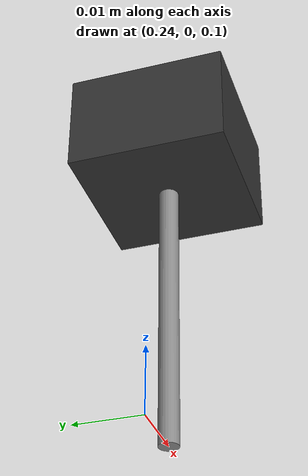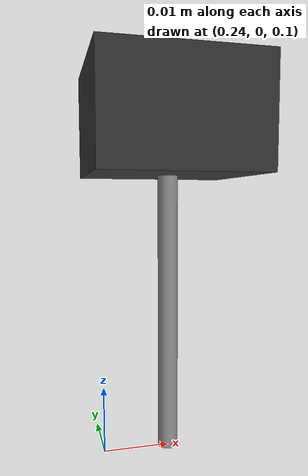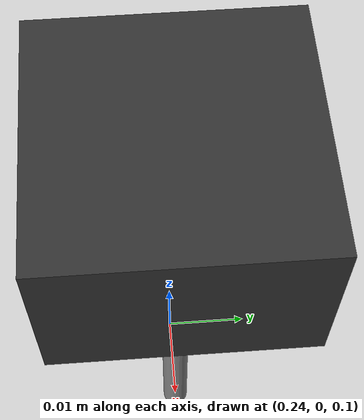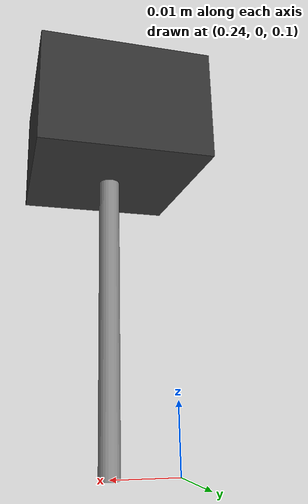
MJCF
<mujoco model="ee_rig">

  <default>
    <default class="ee">
      <geom contype="0" conaffinity="0" group="2"/>
    </default>
  </default>

  <worldbody>
    <body name="mocap_target" mocap="true" pos="0.25 0 0.15">
      <!-- 디버그용 반투명 표식 (목표 위치 확인용, 충돌 없음) -->
      <geom class="ee" type="sphere" size="0.004" rgba="1 1 0 0.35"/>
    </body>

    <body name="ee_body" pos="0.25 0 0.15">
      <freejoint name="ee_free"/>
      <inertial pos="0 0 0" mass="0.05" diaginertia="1e-5 1e-5 1e-5"/>
      <geom class="ee" type="box" size="0.012 0.012 0.008" rgba="0.2 0.2 0.2 1"/>
      <!-- 도구: 얇은 막대, 로컬 -z로 5cm 연장 (so101_new_calib_camera.xml의 검증된 방향/치수 재사용).
           바닥과만 충돌(전용 채널 bit1=2) — ee_body 자신의 표식 박스와는 안 부딪힘(그 박스는 group만
           다르고 contype/conaffinity 0이라 애초에 비충돌). -->
      <geom name="tool_rod" type="cylinder" size="0.0015 0.025" pos="0 0 -0.025"
          rgba="0.55 0.55 0.55 1" contype="2" conaffinity="2" friction="0.3 0.005 0.0001"/>
      <camera name="wrist" pos="-0.06 0 0.03" quat="0.670820 0.223607 -0.223607 -0.670820" fovy="50"/>
    </body>
  </worldbody>

  <equality>
    <!-- solref(time constant, damping ratio): 20ms/critically-damped로 시작 — 부드럽게 목표를
         쫓아가되 바닥 접촉 시 과도한 진동 없이 저항하도록. 불안정하면 첫 값(시간상수)을 늘릴 것. -->
    <weld name="ee_weld" body1="ee_body" body2="mocap_target" solref="0.02 1" solimp="0.9 0.95 0.001"/>
  </equality>
</mujoco>
